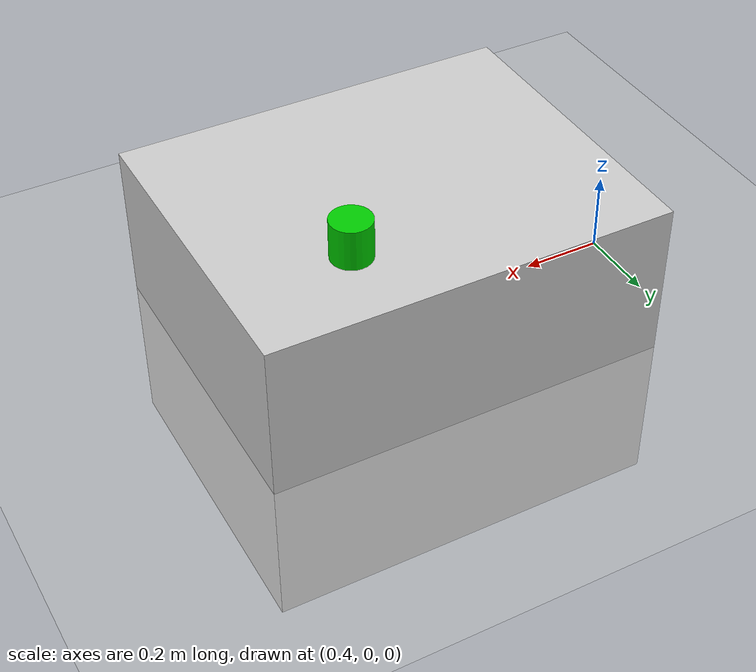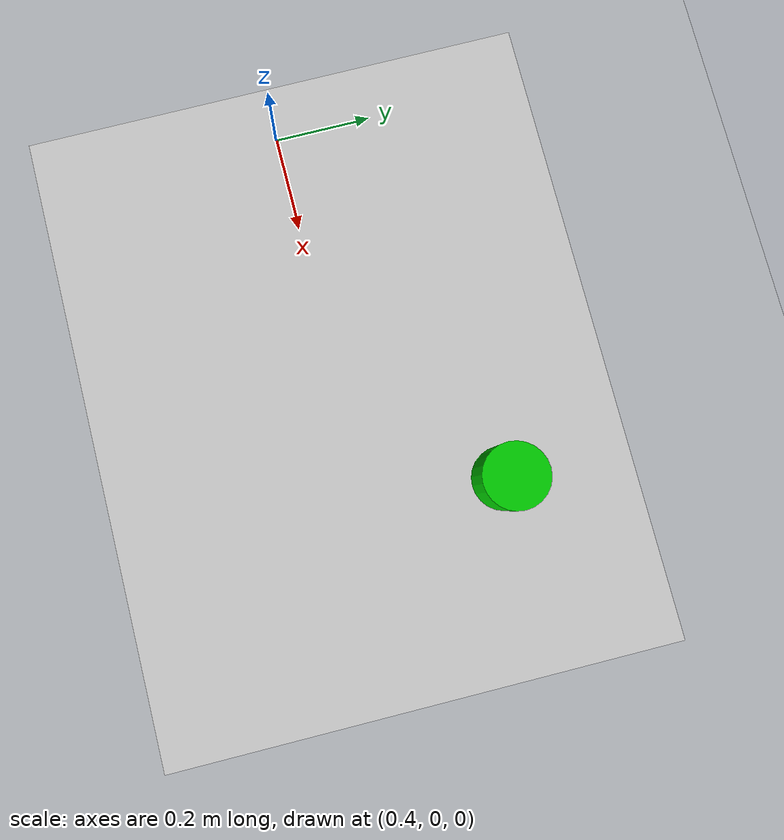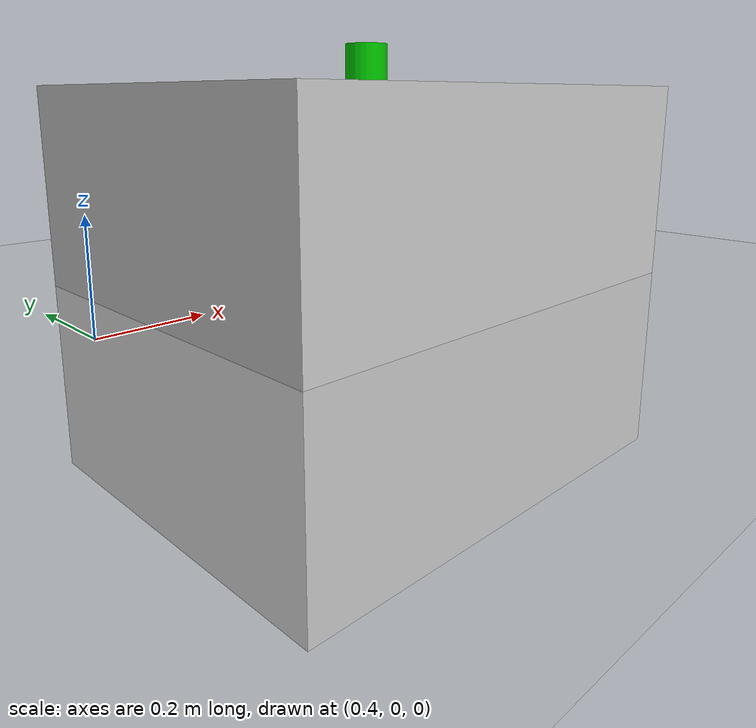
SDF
<?xml version="1.0" ?>
<sdf version="1.7">
  <world name="humanoid_world">
    <!-- Include a ground plane -->
    <include>
      <uri>model://ground_plane</uri>
    </include>

    <!-- Include sun for lighting -->
    <include>
      <uri>model://sun</uri>
    </include>

    <!-- Add a simple table for the robot to interact with -->
    <model name="table">
      <pose>1 0 0 0 0 0</pose>
      <link name="link">
        <collision name="collision">
          <geometry>
            <box>
              <size>1.0 0.8 0.8</size>
            </box>
          </geometry>
        </collision>
        <visual name="visual">
          <geometry>
            <box>
              <size>1.0 0.8 0.8</size>
            </box>
          </geometry>
          <material>
            <ambient>0.8 0.8 0.8 1</ambient>
            <diffuse>0.8 0.8 0.8 1</diffuse>
            <specular>0.8 0.8 0.8 1</specular>
          </material>
        </visual>
        <inertial>
          <mass>100</mass>
          <inertia>
            <ixx>1.0</ixx>
            <ixy>0.0</ixy>
            <ixz>0.0</ixz>
            <iyy>1.0</iyy>
            <iyz>0.0</iyz>
            <izz>1.0</izz>
          </inertia>
        </inertial>
      </link>
    </model>

    <!-- Add a simple object for the robot to detect -->
    <model name="object">
      <pose>1.2 0.2 0.45 0 0 0</pose>
      <link name="link">
        <collision name="collision">
          <geometry>
            <cylinder>
              <radius>0.05</radius>
              <length>0.1</length>
            </cylinder>
          </geometry>
        </collision>
        <visual name="visual">
          <geometry>
            <cylinder>
              <radius>0.05</radius>
              <length>0.1</length>
            </cylinder>
          </geometry>
          <material>
            <ambient>0.0 0.8 0.0 1</ambient>
            <diffuse>0.0 0.8 0.0 1</diffuse>
            <specular>0.0 0.8 0.0 1</specular>
          </material>
        </visual>
        <inertial>
          <mass>0.1</mass>
          <inertia>
            <ixx>0.001</ixx>
            <ixy>0.0</ixy>
            <ixz>0.0</ixz>
            <iyy>0.001</iyy>
            <iyz>0.0</iyz>
            <izz>0.001</izz>
          </inertia>
        </inertial>
      </link>
    </model>

    <!-- Physics parameters -->
    <physics name="1ms" type="ode">
      <max_step_size>0.001</max_step_size>
      <real_time_factor>1</real_time_factor>
      <real_time_update_rate>1000</real_time_update_rate>
    </physics>
  </world>
</sdf>
